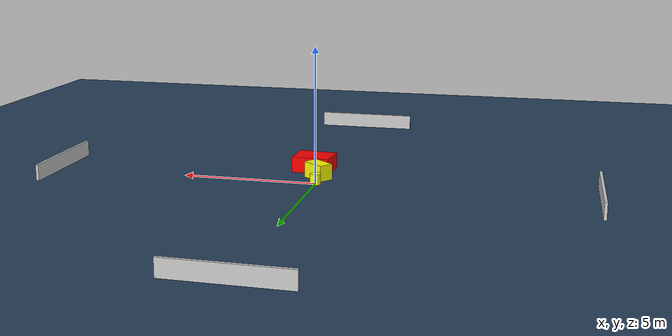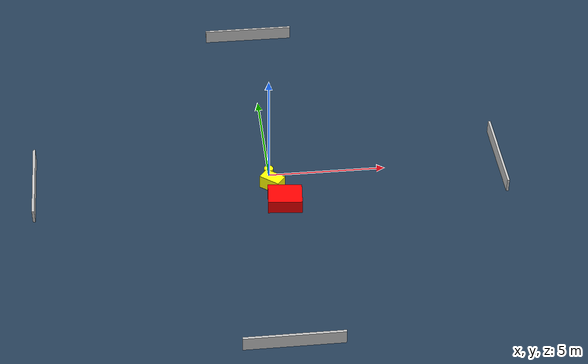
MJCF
<?xml version="1.0" ?>
<mujoco model="generated_environment">
  <option timestep="0.01" integrator="RK4" cone="elliptic"/>
  <default>
    <geom density="1"/>
  </default>
  <asset>
    <texture builtin="gradient" height="3072" name="skybox" rgb1="0.3 0.5 0.7" rgb2="0 0 0" type="skybox" width="512"/>
    <texture builtin="checker" height="300" name="groundplane" rgb1="0.2 0.3 0.4" rgb2="0.1 0.2 0.3" type="2d" width="300"/>
    <material name="groundplane" reflectance="0.2" texrepeat="5 5" texture="groundplane"/>
  </asset>
  <worldbody>
    <light dir="0 0 -1" directional="true" pos="0 0 1.5"/>
    <geom condim="3" friction="0.5 0.005 0.001" material="groundplane" name="floor" pos="0 0 0" size="0 0 0.05" type="plane"/>
    <body name="walls">
      <geom name="wall_1" condim="4" pos="-10.0 0.0 0.3" rgba="0.800000011920929 0.800000011920929 0.800000011920929 1.0" size="0.05 2.0 0.3" type="box"/>
      <geom name="wall_2" condim="4" pos="10.0 0.0 0.3" rgba="0.800000011920929 0.800000011920929 0.800000011920929 1.0" size="0.05 2.0 0.3" type="box"/>
      <geom name="wall_3" condim="4" pos="0.0 -10.0 0.3" rgba="0.800000011920929 0.800000011920929 0.800000011920929 1.0" size="2.0 0.05 0.3" type="box"/>
      <geom name="wall_4" condim="4" pos="0.0 10.0 0.3" rgba="0.800000011920929 0.800000011920929 0.800000011920929 1.0" size="2.0 0.05 0.3" type="box"/>
    </body>
    <body name="robot">
      <joint name="joint_x" type="slide" pos="0 0 0" axis="1 0 0"/>
      <joint name="joint_y" type="slide" pos="0 0 0" axis="0 1 0"/>
      <geom name="robot" type="cylinder" pos="0.0 0.0 0.2" size="0.2 0.2 0.0" mass="5.0" friction="1.0 0.005 0.0001" condim="4" rgba="1.0 1.0 0.0 1.0"/>
    </body>
    <body name="obstacle_1_movable">
      <geom name="obstacle_1_movable" condim="4" pos="0.08064749167736228 -0.7794692393248935 0.3" euler="0 0 322.03301610987126" friction="0.0 0.005 0.001" rgba="1.0 1.0 0.0 1.0" size="0.46169582895120126 0.2783855962754873 0.3" type="box" mass="0.1"/>
      <joint type="free"/>
    </body>
    <body name="obstacle_2_static">
      <geom name="obstacle_2_static" condim="4" pos="0.4995109179146407 -1.9020757949546505 0.3" euler="0 0 85.10730053805916" friction="0.0 0.005 0.001" rgba="1.0 0.0 0.0 1.0" size="0.5539274194409456 0.7165981666897583 0.3" type="box"/>
    </body>
  </worldbody>
  <actuator>
    <motor name="actuator_x" joint="joint_x" gear="1" ctrlrange="-1 1"/>
    <motor name="actuator_y" joint="joint_y" gear="1" ctrlrange="-1 1"/>
  </actuator>
</mujoco>
